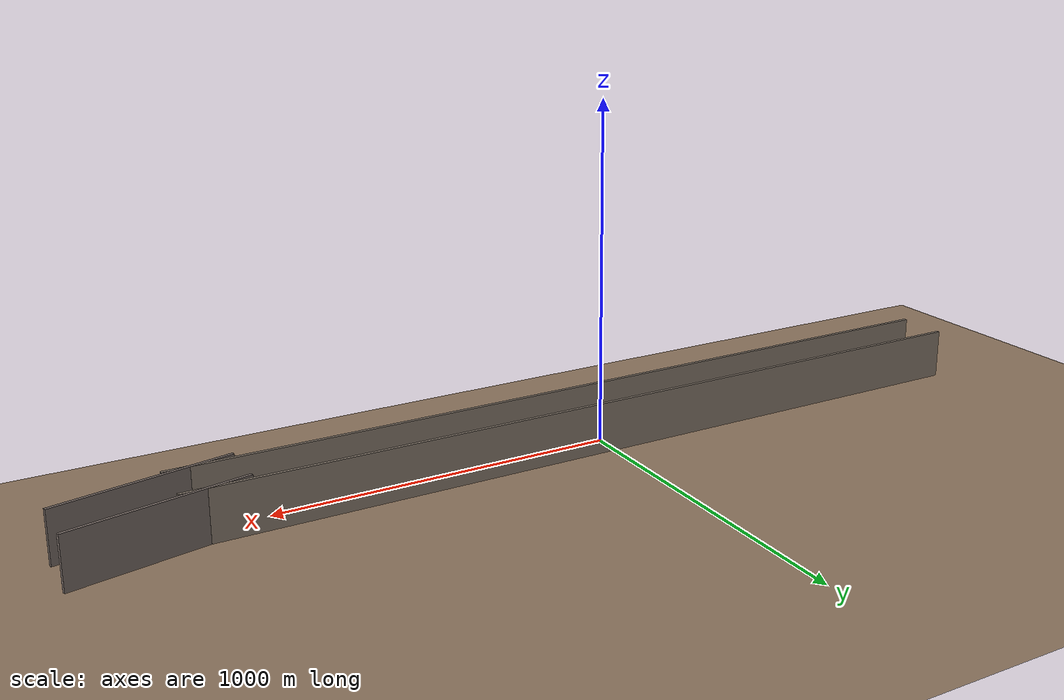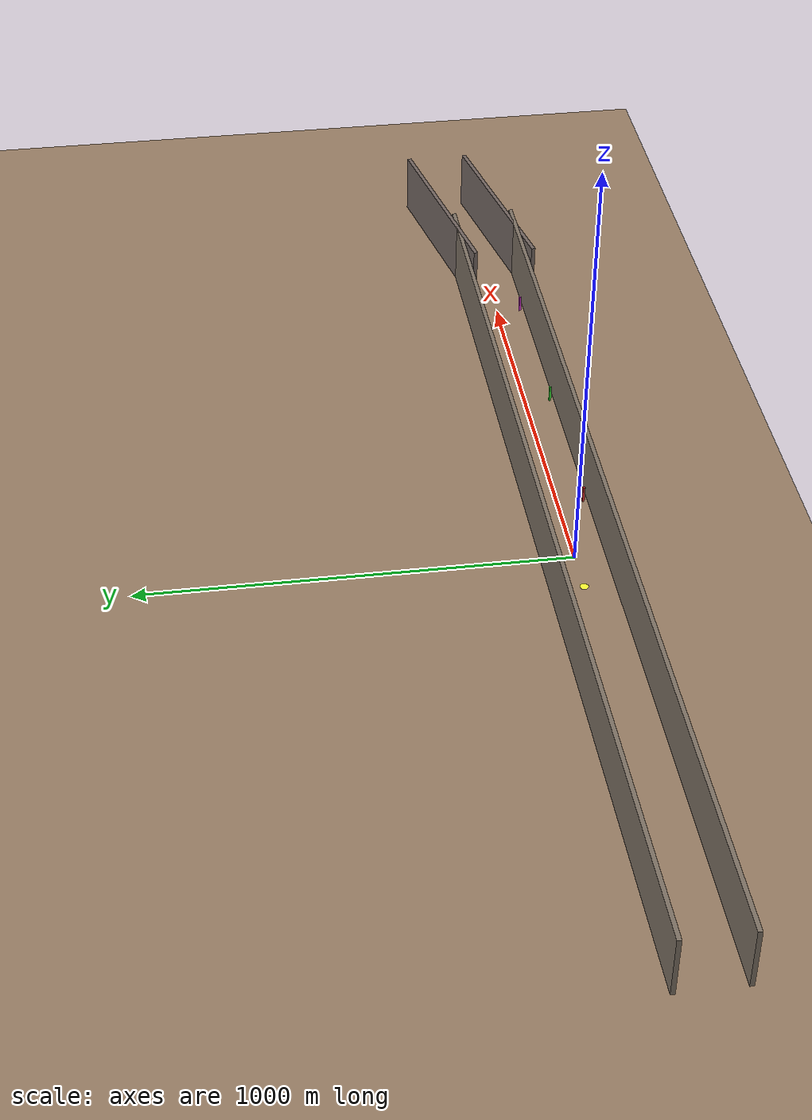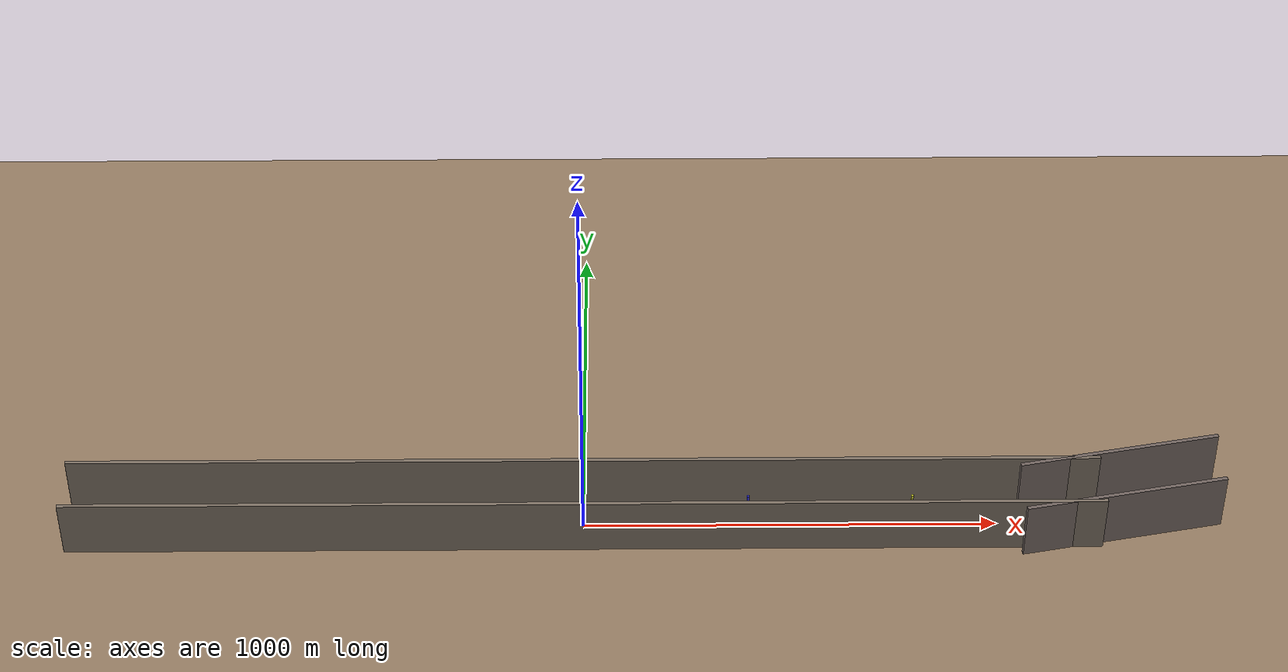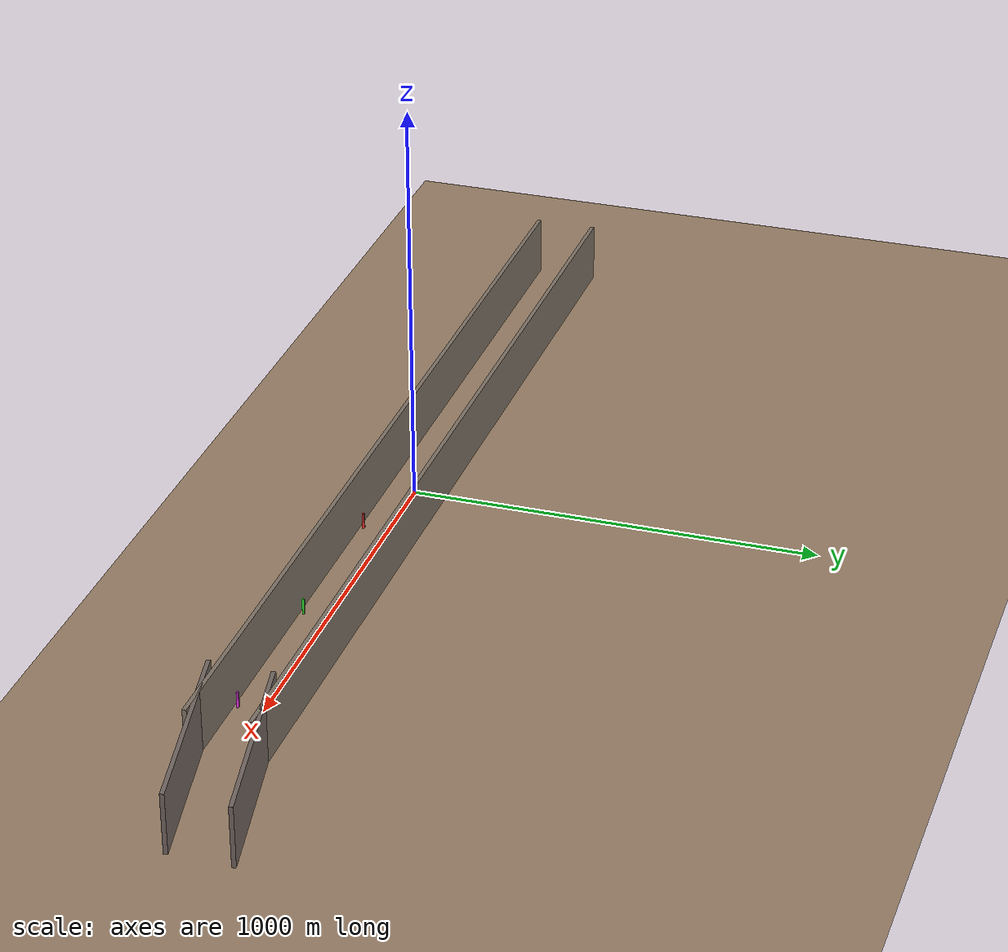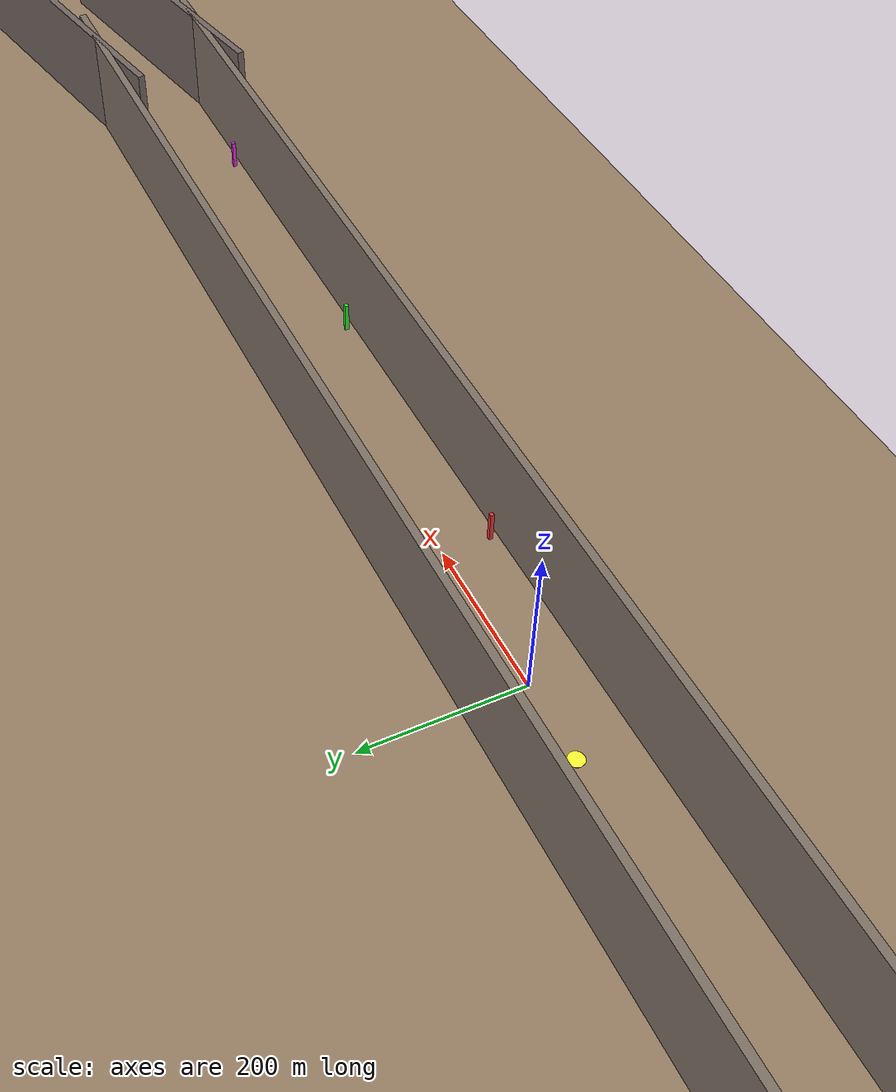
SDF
<?xml version="1.0"?>
<sdf version="1.10">
  <world name="canyon_world">

    <!-- Physics engine configuration -->
    <!-- Smaller step size for stability, especially in headless mode -->
    <physics name="dart_physics" type="dart">
      <max_step_size>0.001</max_step_size>
      <real_time_factor>1.0</real_time_factor>
      <real_time_update_rate>1000</real_time_update_rate>
      <dart>
        <collision_detector>bullet</collision_detector>
      </dart>
    </physics>

    <!-- Required plugins for Gazebo Harmonic -->
    <plugin
      filename="gz-sim-physics-system"
      name="gz::sim::systems::Physics">
    </plugin>
    <plugin
      filename="gz-sim-user-commands-system"
      name="gz::sim::systems::UserCommands">
    </plugin>
    <plugin
      filename="gz-sim-scene-broadcaster-system"
      name="gz::sim::systems::SceneBroadcaster">
    </plugin>
    <plugin
      filename="gz-sim-sensors-system"
      name="gz::sim::systems::Sensors">
      <render_engine>ogre2</render_engine>
    </plugin>
    <plugin
      filename="gz-sim-imu-system"
      name="gz::sim::systems::Imu">
    </plugin>
    <plugin
      filename="gz-sim-air-pressure-system"
      name="gz::sim::systems::AirPressure">
    </plugin>
    <plugin
      filename="gz-sim-magnetometer-system"
      name="gz::sim::systems::Magnetometer">
    </plugin>
    <plugin
      filename="gz-sim-navsat-system"
      name="gz::sim::systems::NavSat">
    </plugin>
    <plugin
      filename="gz-sim-air-speed-system"
      name="gz::sim::systems::AirSpeed">
    </plugin>
    <plugin
      filename="gz-sim-apply-link-wrench-system"
      name="gz::sim::systems::ApplyLinkWrench">
    </plugin>

    <!-- Ambient lighting (overcast canyon) -->
    <scene>
      <ambient>0.6 0.6 0.6 1</ambient>
      <background>0.7 0.8 0.9 1</background>
      <shadows>true</shadows>
    </scene>

    <!-- Directional sun light -->
    <light type="directional" name="sun">
      <cast_shadows>true</cast_shadows>
      <pose>0 0 500 0 0 0</pose>
      <diffuse>0.8 0.8 0.8 1</diffuse>
      <specular>0.2 0.2 0.2 1</specular>
      <attenuation>
        <range>2000</range>
        <constant>0.9</constant>
        <linear>0.001</linear>
        <quadratic>0.0001</quadratic>
      </attenuation>
      <direction>-0.5 0.1 -0.9</direction>
    </light>

    <!-- Ground plane (3000m x 500m) -->
    <model name="ground_plane">
      <static>true</static>
      <link name="link">
        <collision name="collision">
          <geometry>
            <plane>
              <normal>0 0 1</normal>
              <size>3000 500</size>
            </plane>
          </geometry>
          <surface>
            <friction>
              <ode>
                <mu>100</mu>
                <mu2>50</mu2>
              </ode>
            </friction>
          </surface>
        </collision>
        <visual name="visual">
          <geometry>
            <plane>
              <normal>0 0 1</normal>
              <size>3000 500</size>
            </plane>
          </geometry>
          <material>
            <ambient>0.5 0.4 0.35 1</ambient>
            <diffuse>0.6 0.5 0.4 1</diffuse>
            <specular>0.1 0.1 0.1 1</specular>
          </material>
        </visual>
      </link>
    </model>

    <!-- Canyon wall - Left side (2500m long, 150m high) -->
    <model name="canyon_wall_left">
      <static>true</static>
      <pose>0 -75 75 0 0 0</pose>
      <link name="link">
        <collision name="collision">
          <geometry>
            <box>
              <size>2500 10 150</size>
            </box>
          </geometry>
        </collision>
        <visual name="visual">
          <geometry>
            <box>
              <size>2500 10 150</size>
            </box>
          </geometry>
          <material>
            <ambient>0.4 0.35 0.3 1</ambient>
            <diffuse>0.5 0.45 0.4 1</diffuse>
            <specular>0.05 0.05 0.05 1</specular>
          </material>
        </visual>
      </link>
    </model>

    <!-- Canyon wall - Right side -->
    <model name="canyon_wall_right">
      <static>true</static>
      <pose>0 75 75 0 0 0</pose>
      <link name="link">
        <collision name="collision">
          <geometry>
            <box>
              <size>2500 10 150</size>
            </box>
          </geometry>
        </collision>
        <visual name="visual">
          <geometry>
            <box>
              <size>2500 10 150</size>
            </box>
          </geometry>
          <material>
            <ambient>0.4 0.35 0.3 1</ambient>
            <diffuse>0.5 0.45 0.4 1</diffuse>
            <specular>0.05 0.05 0.05 1</specular>
          </material>
        </visual>
      </link>
    </model>

    <!-- Curve section - gentle left turn -->
    <model name="canyon_curve_left_inner">
      <static>true</static>
      <pose>1300 -50 75 0 0 0.2</pose>
      <link name="link">
        <collision name="collision">
          <geometry>
            <box>
              <size>500 10 150</size>
            </box>
          </geometry>
        </collision>
        <visual name="visual">
          <geometry>
            <box>
              <size>500 10 150</size>
            </box>
          </geometry>
          <material>
            <ambient>0.35 0.3 0.28 1</ambient>
            <diffuse>0.45 0.4 0.38 1</diffuse>
          </material>
        </visual>
      </link>
    </model>

    <model name="canyon_curve_left_outer">
      <static>true</static>
      <pose>1300 100 75 0 0 0.2</pose>
      <link name="link">
        <collision name="collision">
          <geometry>
            <box>
              <size>500 10 150</size>
            </box>
          </geometry>
        </collision>
        <visual name="visual">
          <geometry>
            <box>
              <size>500 10 150</size>
            </box>
          </geometry>
          <material>
            <ambient>0.35 0.3 0.28 1</ambient>
            <diffuse>0.45 0.4 0.38 1</diffuse>
          </material>
        </visual>
      </link>
    </model>

    <!-- Visual markers for feature tracking (every 200m) -->
    <model name="marker_200m">
      <static>true</static>
      <pose>200 -60 20 0 0 0</pose>
      <link name="link">
        <visual name="visual">
          <geometry>
            <box>
              <size>5 5 40</size>
            </box>
          </geometry>
          <material>
            <ambient>0.8 0.1 0.1 1</ambient>
            <diffuse>0.9 0.2 0.2 1</diffuse>
          </material>
        </visual>
      </link>
    </model>

    <model name="marker_400m">
      <static>true</static>
      <pose>400 60 20 0 0 0</pose>
      <link name="link">
        <visual name="visual">
          <geometry>
            <box>
              <size>5 5 40</size>
            </box>
          </geometry>
          <material>
            <ambient>0.1 0.1 0.8 1</ambient>
            <diffuse>0.2 0.2 0.9 1</diffuse>
          </material>
        </visual>
      </link>
    </model>

    <model name="marker_600m">
      <static>true</static>
      <pose>600 -60 20 0 0 0</pose>
      <link name="link">
        <visual name="visual">
          <geometry>
            <box>
              <size>5 5 40</size>
            </box>
          </geometry>
          <material>
            <ambient>0.1 0.8 0.1 1</ambient>
            <diffuse>0.2 0.9 0.2 1</diffuse>
          </material>
        </visual>
      </link>
    </model>

    <model name="marker_800m">
      <static>true</static>
      <pose>800 60 20 0 0 0</pose>
      <link name="link">
        <visual name="visual">
          <geometry>
            <box>
              <size>5 5 40</size>
            </box>
          </geometry>
          <material>
            <ambient>0.8 0.8 0.1 1</ambient>
            <diffuse>0.9 0.9 0.2 1</diffuse>
          </material>
        </visual>
      </link>
    </model>

    <model name="marker_1000m">
      <static>true</static>
      <pose>1000 -60 20 0 0 0</pose>
      <link name="link">
        <visual name="visual">
          <geometry>
            <box>
              <size>5 5 40</size>
            </box>
          </geometry>
          <material>
            <ambient>0.8 0.1 0.8 1</ambient>
            <diffuse>0.9 0.2 0.9 1</diffuse>
          </material>
        </visual>
      </link>
    </model>

    <!-- Spawn point marker (origin) -->
    <model name="spawn_marker">
      <static>true</static>
      <pose>-100 0 0.1 0 0 0</pose>
      <link name="link">
        <visual name="visual">
          <geometry>
            <cylinder>
              <radius>10</radius>
              <length>0.2</length>
            </cylinder>
          </geometry>
          <material>
            <ambient>0.9 0.9 0.1 1</ambient>
            <diffuse>1.0 1.0 0.2 1</diffuse>
          </material>
        </visual>
      </link>
    </model>

    <!-- Gravity -->
    <gravity>0 0 -9.81</gravity>

    <!-- Magnetic field (for magnetometer - typical Earth field) -->
    <magnetic_field>5.5645e-6 22.8758e-6 -42.3884e-6</magnetic_field>

    <atmosphere type="adiabatic">
      <temperature>284.978</temperature>
      <pressure>95601</pressure>
      <temperature_gradient>-0.0065</temperature_gradient>
    </atmosphere>

    <!-- Follow camera is now attached to the plane/quadtailsitter model directly -->

    <!-- Spherical coordinates for GPS reference (if needed later) -->
    <spherical_coordinates>
      <surface_model>EARTH_WGS84</surface_model>
      <world_frame_orientation>ENU</world_frame_orientation>
      <latitude_deg>47.397742</latitude_deg>
      <longitude_deg>8.545594</longitude_deg>
      <elevation>488.0</elevation>
      <heading_deg>0</heading_deg>
    </spherical_coordinates>

  </world>
</sdf>
